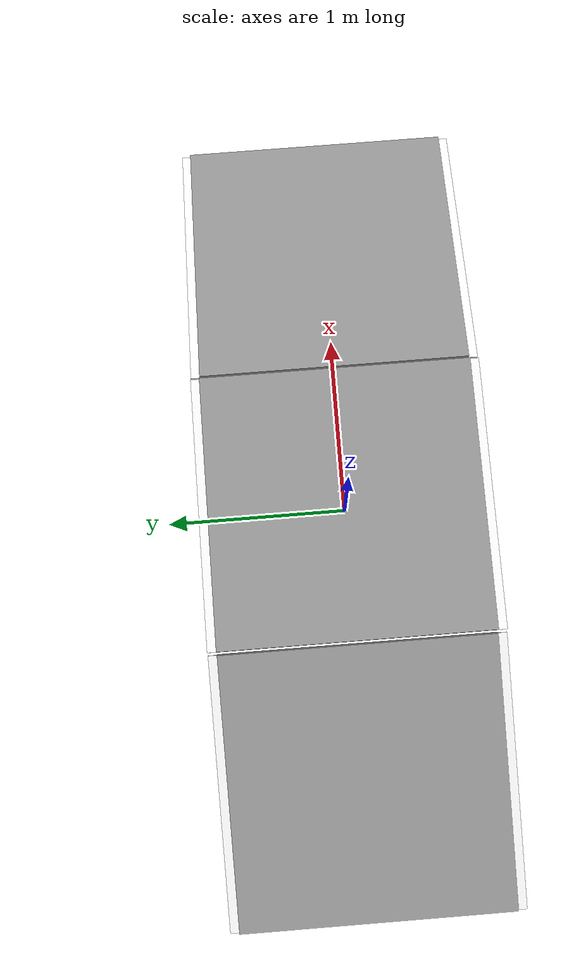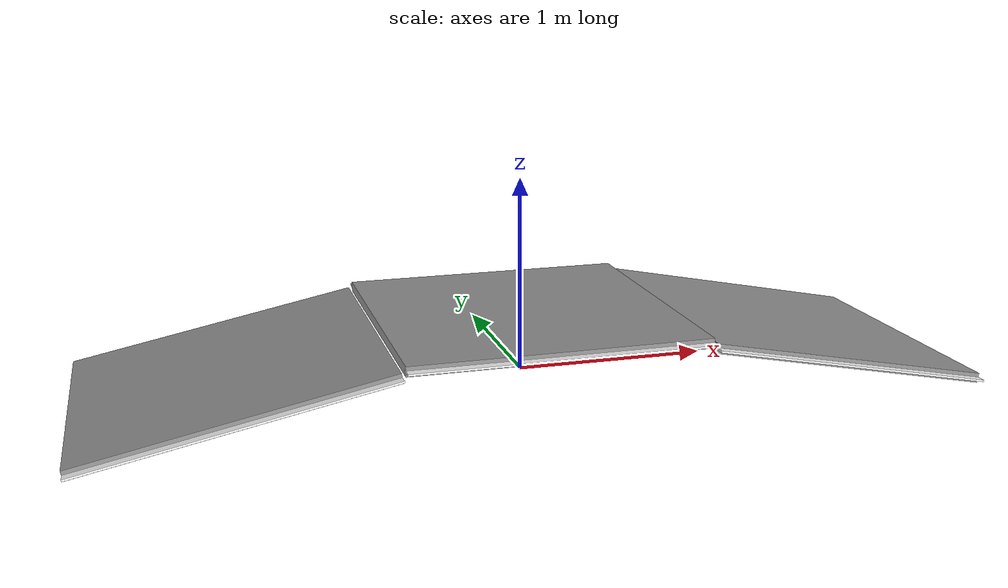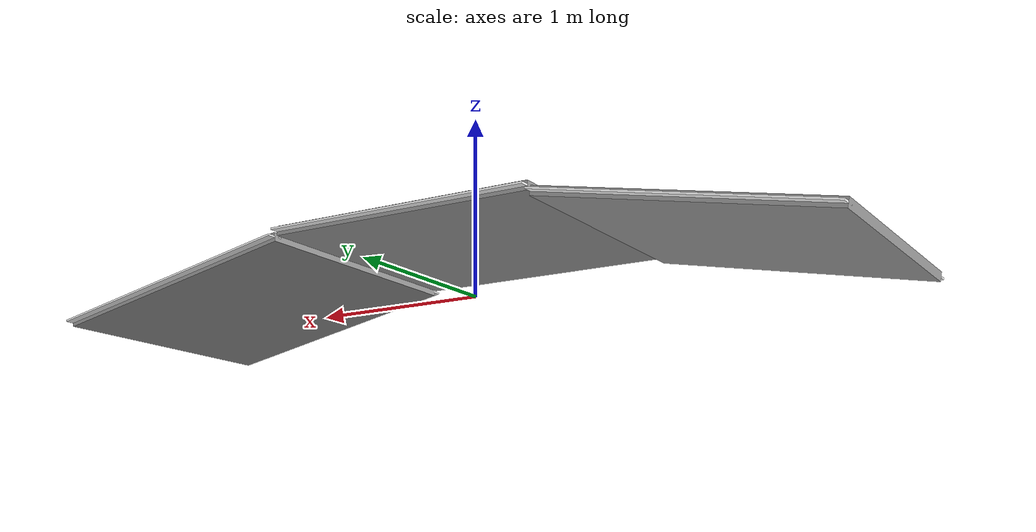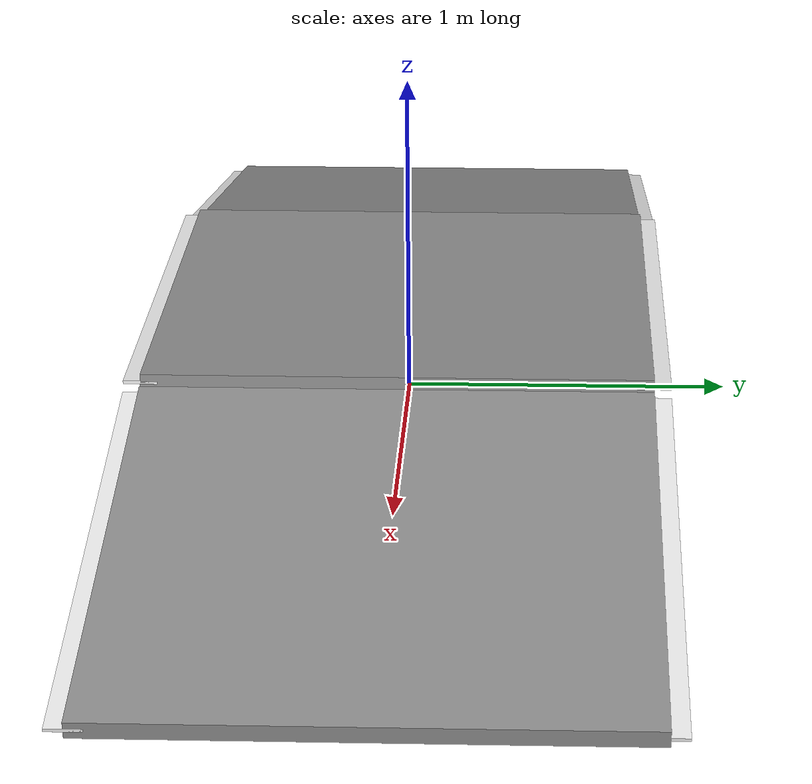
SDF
<?xml version="1.0" ?>
<sdf version="1.6">
  <model name="ramp">
    <static>true</static>

    <!-- Up slope -->
    <link name="up_slope">
      <pose>-1.5 0 0.125 0 -0.1963 0</pose>
      <collision name="ramp_collision">
        <geometry><box><size>1.5 1.5 0.05</size></box></geometry>
        <surface>
          <friction><ode><mu>1.0</mu><mu2>1.0</mu2></ode></friction>
        </surface>
      </collision>
      <visual name="visual">
        <geometry><box><size>1.5 1.5 0.05</size></box></geometry>
        <material>
          <ambient>0.5 0.5 0.5 1</ambient>
          <diffuse>0.6 0.6 0.6 1</diffuse>
        </material>
      </visual>
    </link>

    <!-- Up slope lane lines -->
    <link name="up_slope_lane_left">
      <pose>-1.5 0.75 0.125 0 -0.1963 0</pose>
      <visual name="visual">
        <geometry><box><size>1.5 0.1 0.01</size></box></geometry>
        <material>
          <ambient>1 1 1 1</ambient>
          <diffuse>1 1 1 1</diffuse>
          <emissive>1 1 1 1</emissive>
        </material>
      </visual>
    </link>
    <link name="up_slope_lane_right">
      <pose>-1.5 -0.75 0.125 0 -0.1963 0</pose>
      <visual name="visual">
        <geometry><box><size>1.5 0.1 0.01</size></box></geometry>
        <material>
          <ambient>1 1 1 1</ambient>
          <diffuse>1 1 1 1</diffuse>
          <emissive>1 1 1 1</emissive>
        </material>
      </visual>
    </link>

    <!-- Flat top -->
    <link name="flat_top">
      <pose>0 0 0.3 0 0 0</pose>
      <collision name="ramp_collision">
        <geometry><box><size>1.5 1.5 0.05</size></box></geometry>
        <surface>
          <friction><ode><mu>1.0</mu><mu2>1.0</mu2></ode></friction>
        </surface>
      </collision>
      <visual name="visual">
        <geometry><box><size>1.5 1.5 0.05</size></box></geometry>
        <material>
          <ambient>0.5 0.5 0.5 1</ambient>
          <diffuse>0.6 0.6 0.6 1</diffuse>
        </material>
      </visual>
    </link>

    <!-- Flat top lane lines -->
    <link name="flat_top_lane_left">
      <pose>0 0.75 0.3 0 0 0</pose>
      <visual name="visual">
        <geometry><box><size>1.5 0.1 0.01</size></box></geometry>
        <material>
          <ambient>1 1 1 1</ambient>
          <diffuse>1 1 1 1</diffuse>
          <emissive>1 1 1 1</emissive>
        </material>
      </visual>
    </link>
    <link name="flat_top_lane_right">
      <pose>0 -0.75 0.3 0 0 0</pose>
      <visual name="visual">
        <geometry><box><size>1.5 0.1 0.01</size></box></geometry>
        <material>
          <ambient>1 1 1 1</ambient>
          <diffuse>1 1 1 1</diffuse>
          <emissive>1 1 1 1</emissive>
        </material>
      </visual>
    </link>

    <!-- Down slope -->
    <link name="down_slope">
      <pose>1.5 0 0.125 0 0.1963 0</pose>
      <collision name="ramp_collision">
        <geometry><box><size>1.5 1.5 0.05</size></box></geometry>
        <surface>
          <friction><ode><mu>1.0</mu><mu2>1.0</mu2></ode></friction>
        </surface>
      </collision>
      <visual name="visual">
        <geometry><box><size>1.5 1.5 0.05</size></box></geometry>
        <material>
          <ambient>0.5 0.5 0.5 1</ambient>
          <diffuse>0.6 0.6 0.6 1</diffuse>
        </material>
      </visual>
    </link>

    <!-- Down slope lane lines -->
    <link name="down_slope_lane_left">
      <pose>1.5 0.75 0.125 0 0.1963 0</pose>
      <visual name="visual">
        <geometry><box><size>1.5 0.1 0.01</size></box></geometry>
        <material>
          <ambient>1 1 1 1</ambient>
          <diffuse>1 1 1 1</diffuse>
          <emissive>1 1 1 1</emissive>
        </material>
      </visual>
    </link>
    <link name="down_slope_lane_right">
      <pose>1.5 -0.75 0.125 0 0.1963 0</pose>
      <visual name="visual">
        <geometry><box><size>1.5 0.1 0.01</size></box></geometry>
        <material>
          <ambient>1 1 1 1</ambient>
          <diffuse>1 1 1 1</diffuse>
          <emissive>1 1 1 1</emissive>
        </material>
      </visual>
    </link>

  </model>
</sdf>
